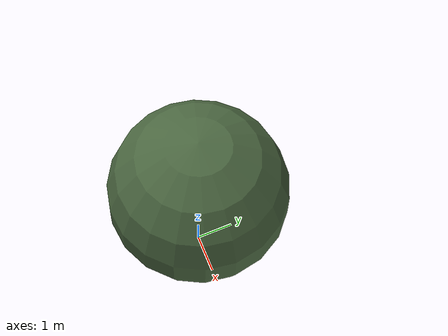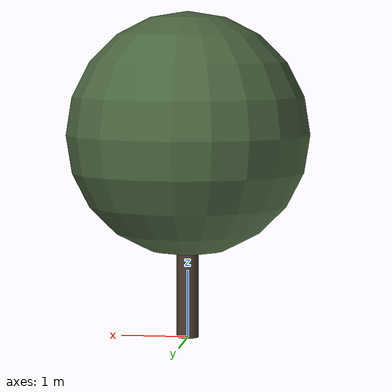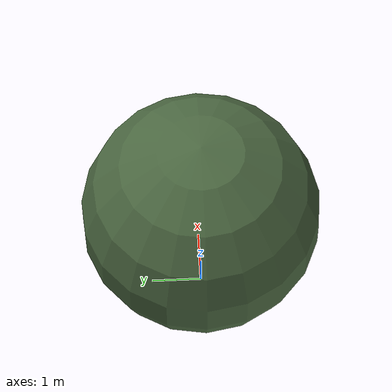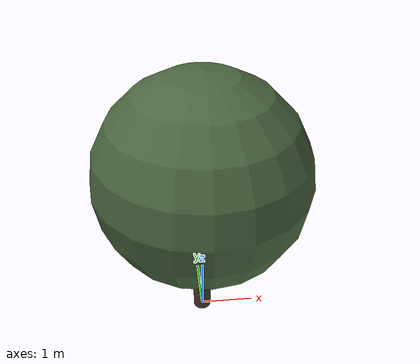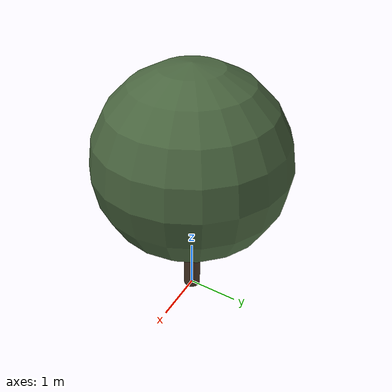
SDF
<?xml version="1.0" ?>
<sdf version="1.10">
  <model name="chene_vert_02">
    <static>true</static>

    <!-- Tronc -->
    <link name="trunk">
      <pose>0 0 1.2515528110447558 0 0 0</pose>
      <visual name="trunk_visual">
        <geometry>
          <cylinder>
            <radius>0.16623268772923241</radius>
            <length>2.5031056220895116</length>
          </cylinder>
        </geometry>
        <material>
          <ambient>0.29 0.22 0.16 1</ambient>
          <diffuse>0.29 0.22 0.16 1</diffuse>
          <specular>0.1 0.1 0.1 1</specular>
        </material>
      </visual>
      <collision name="trunk_collision">
        <geometry>
          <cylinder>
            <radius>0.16623268772923241</radius>
            <length>2.5031056220895116</length>
          </cylinder>
        </geometry>
      </collision>
    </link>

    <!-- Feuillage -->
    <link name="crown">
      <pose>0 0 3.050384558915741 0 0 0</pose>
      <visual name="crown_visual">
        <geometry>
          <sphere>
              <radius>1.824263122754098</radius>
            </sphere>
        </geometry>
        <material>
          <ambient>0.29 0.40 0.25 1</ambient>
          <diffuse>0.29 0.40 0.25 1</diffuse>
          <specular>0.1 0.1 0.1 1</specular>
        </material>
      </visual>
      <collision name="crown_collision">
        <geometry>
          <sphere>
            <radius>1.4594104982032785</radius>
          </sphere>
        </geometry>
      </collision>
    </link>

    <!-- Joint tronc-feuillage -->
    <joint name="trunk_crown_joint" type="fixed">
      <parent>trunk</parent>
      <child>crown</child>
    </joint>

  </model>
</sdf>
